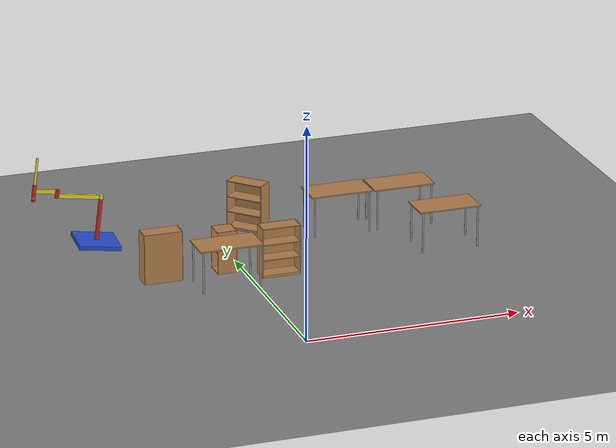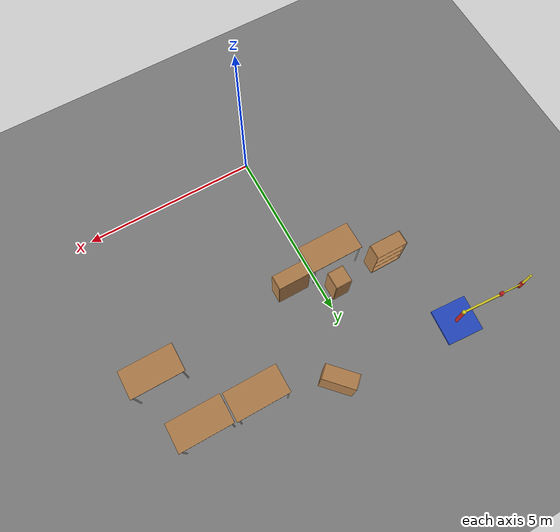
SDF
<sdf version="1.6">
 <world name="default">
  <model name="ground_plane">
   <static>1</static>
   <link name="link">
    <collision name="collision">
     <geometry><plane><normal>0 0 1</normal><size>100 100</size></plane></geometry>
    </collision>
    <visual name="visual">
     <geometry><plane><normal>0 0 1</normal><size>100 100</size></plane></geometry>
     <material>
      <ambient>0.5 0.5 0.5 1</ambient>
      <diffuse>0.5 0.5 0.5 1</diffuse>
      <specular>0.1 0.1 0.1 1</specular>
     </material>
    </visual>
   </link>
  </model>
  <model name="bookshelf_1">
   <static>1</static>
   <link name="link">
    <inertial><mass>1</mass></inertial>
    <collision name="back">
     <pose>0 0.005 0.6 0 -0 0</pose>
     <geometry><box><size>0.9 0.01 1.2</size></box></geometry>
    </collision>
    <visual name="visual1">
     <pose>0 0.005 0.6 0 -0 0</pose>
     <geometry><box><size>0.9 0.01 1.2</size></box></geometry>
     <material>
      <script><uri>file://media/materials/scripts/gazebo.material</uri><name>Gazebo/Wood</name></script>
     </material>
    </visual>
    <collision name="left_side">
     <pose>0.45 -0.195 0.6 0 -0 0</pose>
     <geometry><box><size>0.02 0.4 1.2</size></box></geometry>
    </collision>
    <visual name="visual2">
     <pose>0.45 -0.195 0.6 0 -0 0</pose>
     <geometry><box><size>0.02 0.4 1.2</size></box></geometry>
     <material>
      <script><uri>file://media/materials/scripts/gazebo.material</uri><name>Gazebo/Wood</name></script>
     </material>
    </visual>
    <collision name="right_side">
     <pose>-0.45 -0.195 0.6 0 -0 0</pose>
     <geometry><box><size>0.02 0.4 1.2</size></box></geometry>
    </collision>
    <visual name="visual3">
     <pose>-0.45 -0.195 0.6 0 -0 0</pose>
     <geometry><box><size>0.02 0.4 1.2</size></box></geometry>
     <material>
      <script><uri>file://media/materials/scripts/gazebo.material</uri><name>Gazebo/Wood</name></script>
     </material>
    </visual>
    <collision name="bottom">
     <pose>0 -0.195 0.03 0 -0 0</pose>
     <geometry><box><size>0.88 0.4 0.06</size></box></geometry>
    </collision>
    <visual name="visual4">
     <pose>0 -0.195 0.03 0 -0 0</pose>
     <geometry><box><size>0.88 0.4 0.06</size></box></geometry>
     <material>
      <script><uri>file://media/materials/scripts/gazebo.material</uri><name>Gazebo/Wood</name></script>
     </material>
    </visual>
    <collision name="top">
     <pose>0 -0.195 1.19 0 -0 0</pose>
     <geometry><box><size>0.88 0.4 0.02</size></box></geometry>
    </collision>
    <visual name="visual5">
     <pose>0 -0.195 1.19 0 -0 0</pose>
     <geometry><box><size>0.88 0.4 0.02</size></box></geometry>
     <material>
      <script><uri>file://media/materials/scripts/gazebo.material</uri><name>Gazebo/Wood</name></script>
     </material>
    </visual>
    <collision name="low_shelf">
     <pose>0 -0.195 0.43 0 -0 0</pose>
     <geometry><box><size>0.88 0.4 0.02</size></box></geometry>
    </collision>
    <visual name="visual6">
     <pose>0 -0.195 0.43 0 -0 0</pose>
     <geometry><box><size>0.88 0.4 0.02</size></box></geometry>
     <material>
      <script><uri>file://media/materials/scripts/gazebo.material</uri><name>Gazebo/Wood</name></script>
     </material>
    </visual>
    <collision name="high_shelf">
     <pose>0 -0.195 0.8 0 -0 0</pose>
     <geometry><box><size>0.88 0.4 0.02</size></box></geometry>
    </collision>
    <visual name="visual7">
     <pose>0 -0.195 0.8 0 -0 0</pose>
     <geometry><box><size>0.88 0.4 0.02</size></box></geometry>
     <material>
      <script><uri>file://media/materials/scripts/gazebo.material</uri><name>Gazebo/Wood</name></script>
     </material>
    </visual>
   </link>
   <pose>1.07535 6.96109 0 0 0 -0.814368</pose>
  </model>
  <model name="simple_arm">
   <link name="arm_base">
    <inertial>
     <pose>0 0 0.00099 0 -0 0</pose>
     <inertia><ixx>1.11</ixx><ixy>0</ixy><ixz>0</ixz><iyy>100.11</iyy><iyz>0</iyz><izz>1.01</izz></inertia>
     <mass>101</mass>
    </inertial>
    <collision name="arm_base_geom">
     <pose>0 0 0.05 0 -0 0</pose>
     <geometry><box><size>1 1 0.1</size></box></geometry>
    </collision>
    <visual name="arm_base_geom_visual">
     <pose>0 0 0.05 0 -0 0</pose>
     <geometry><box><size>1 1 0.1</size></box></geometry>
     <material>
      <script><uri>file://media/materials/scripts/gazebo.material</uri><name>Gazebo/Blue</name></script>
     </material>
    </visual>
    <collision name="arm_base_geom_arm_trunk">
     <pose>0 0 0.6 0 -0 0</pose>
     <geometry><cylinder><radius>0.05</radius><length>1</length></cylinder></geometry>
    </collision>
    <visual name="arm_base_geom_arm_trunk_visual">
     <pose>0 0 0.6 0 -0 0</pose>
     <geometry><cylinder><radius>0.05</radius><length>1</length></cylinder></geometry>
     <material>
      <script><uri>file://media/materials/scripts/gazebo.material</uri><name>Gazebo/Red</name></script>
     </material>
    </visual>
   </link>
   <link name="arm_shoulder_pan">
    <pose>0 0 1.1 0 -0 0</pose>
    <inertial>
     <pose>0.045455 0 0 0 -0 0</pose>
     <inertia><ixx>0.011</ixx><ixy>0</ixy><ixz>0</ixz><iyy>0.0225</iyy><iyz>0</iyz><izz>0.0135</izz></inertia>
     <mass>1.1</mass>
    </inertial>
    <collision name="arm_shoulder_pan_geom">
     <pose>0 0 0.05 0 -0 0</pose>
     <geometry><cylinder><radius>0.05</radius><length>0.1</length></cylinder></geometry>
    </collision>
    <visual name="arm_shoulder_pan_geom_visual">
     <pose>0 0 0.05 0 -0 0</pose>
     <geometry><cylinder><radius>0.05</radius><length>0.1</length></cylinder></geometry>
     <material>
      <script><uri>file://media/materials/scripts/gazebo.material</uri><name>Gazebo/Yellow</name></script>
     </material>
    </visual>
    <collision name="arm_shoulder_pan_geom_arm_shoulder">
     <pose>0.55 0 0.05 0 -0 0</pose>
     <geometry><box><size>1 0.05 0.1</size></box></geometry>
    </collision>
    <visual name="arm_shoulder_pan_geom_arm_shoulder_visual">
     <pose>0.55 0 0.05 0 -0 0</pose>
     <geometry><box><size>1 0.05 0.1</size></box></geometry>
     <material>
      <script><uri>file://media/materials/scripts/gazebo.material</uri><name>Gazebo/Yellow</name></script>
     </material>
    </visual>
   </link>
   <link name="arm_elbow_pan">
    <pose>1.05 0 1.1 0 -0 0</pose>
    <inertial>
     <pose>0.0875 0 0.083333 0 -0 0</pose>
     <inertia>
      <ixx>0.031</ixx>
      <ixy>0</ixy>
      <ixz>0.005</ixz>
      <iyy>0.07275</iyy>
      <iyz>0</iyz>
      <izz>0.04475</izz>
     </inertia>
     <mass>1.2</mass>
    </inertial>
    <collision name="arm_elbow_pan_geom">
     <pose>0 0 0.1 0 -0 0</pose>
     <geometry><cylinder><radius>0.05</radius><length>0.2</length></cylinder></geometry>
    </collision>
    <visual name="arm_elbow_pan_geom_visual">
     <pose>0 0 0.1 0 -0 0</pose>
     <geometry><cylinder><radius>0.05</radius><length>0.2</length></cylinder></geometry>
     <material>
      <script><uri>file://media/materials/scripts/gazebo.material</uri><name>Gazebo/Red</name></script>
     </material>
    </visual>
    <collision name="arm_elbow_pan_geom_arm_elbow">
     <pose>0.3 0 0.15 0 -0 0</pose>
     <geometry><box><size>0.5 0.03 0.1</size></box></geometry>
    </collision>
    <visual name="arm_elbow_pan_geom_arm_elbow_visual">
     <pose>0.3 0 0.15 0 -0 0</pose>
     <geometry><box><size>0.5 0.03 0.1</size></box></geometry>
     <material>
      <script><uri>file://media/materials/scripts/gazebo.material</uri><name>Gazebo/Yellow</name></script>
     </material>
    </visual>
    <collision name="arm_elbow_pan_geom_arm_wrist">
     <pose>0.55 0 0.15 0 -0 0</pose>
     <geometry><cylinder><radius>0.05</radius><length>0.3</length></cylinder></geometry>
    </collision>
    <visual name="arm_elbow_pan_geom_arm_wrist_visual">
     <pose>0.55 0 0.15 0 -0 0</pose>
     <geometry><cylinder><radius>0.05</radius><length>0.3</length></cylinder></geometry>
     <material>
      <script><uri>file://media/materials/scripts/gazebo.material</uri><name>Gazebo/Red</name></script>
     </material>
    </visual>
   </link>
   <link name="arm_wrist_lift">
    <pose>1.6 0 1.05 0 -0 0</pose>
    <inertial>
     <inertia><ixx>0.01</ixx><ixy>0</ixy><ixz>0</ixz><iyy>0.01</iyy><iyz>0</iyz><izz>0.001</izz></inertia>
     <mass>0.1</mass>
    </inertial>
    <collision name="arm_wrist_lift_geom">
     <pose>0 0 0.5 0 -0 0</pose>
     <geometry><cylinder><radius>0.03</radius><length>1</length></cylinder></geometry>
    </collision>
    <visual name="arm_wrist_lift_geom_visual">
     <pose>0 0 0.5 0 -0 0</pose>
     <geometry><cylinder><radius>0.03</radius><length>1</length></cylinder></geometry>
     <material>
      <script><uri>file://media/materials/scripts/gazebo.material</uri><name>Gazebo/Yellow</name></script>
     </material>
    </visual>
   </link>
   <link name="arm_wrist_roll">
    <pose>1.6 0 1 0 -0 0</pose>
    <inertial>
     <inertia><ixx>0.01</ixx><ixy>0</ixy><ixz>0</ixz><iyy>0.01</iyy><iyz>0</iyz><izz>0.001</izz></inertia>
     <mass>0.1</mass>
    </inertial>
    <collision name="arm_wrist_roll_geom">
     <pose>0 0 0.025 0 -0 0</pose>
     <geometry><cylinder><radius>0.05</radius><length>0.05</length></cylinder></geometry>
    </collision>
    <visual name="arm_wrist_roll_geom_visual">
     <pose>0 0 0.025 0 -0 0</pose>
     <geometry><cylinder><radius>0.05</radius><length>0.05</length></cylinder></geometry>
     <material>
      <script><uri>file://media/materials/scripts/gazebo.material</uri><name>Gazebo/Red</name></script>
     </material>
    </visual>
   </link>
   <joint name="arm_shoulder_pan_joint" type="revolute">
    <parent>arm_base</parent>
    <child>arm_shoulder_pan</child>
    <axis>
     <dynamics>
      <damping>1</damping>
      <friction>0</friction>
      <spring_reference>0</spring_reference>
      <spring_stiffness>0</spring_stiffness>
     </dynamics>
     <xyz>0 0 1</xyz>
     <use_parent_model_frame>1</use_parent_model_frame>
     <limit><lower>-1e+16</lower><upper>1e+16</upper></limit>
    </axis>
   </joint>
   <joint name="arm_elbow_pan_joint" type="revolute">
    <parent>arm_shoulder_pan</parent>
    <child>arm_elbow_pan</child>
    <axis>
     <dynamics>
      <damping>1</damping>
      <friction>0</friction>
      <spring_reference>0</spring_reference>
      <spring_stiffness>0</spring_stiffness>
     </dynamics>
     <xyz>0 0 1</xyz>
     <use_parent_model_frame>1</use_parent_model_frame>
     <limit><lower>-1e+16</lower><upper>1e+16</upper></limit>
    </axis>
   </joint>
   <joint name="arm_wrist_lift_joint" type="prismatic">
    <parent>arm_elbow_pan</parent>
    <child>arm_wrist_lift</child>
    <axis>
     <dynamics>
      <damping>1</damping>
      <friction>0</friction>
      <spring_reference>0</spring_reference>
      <spring_stiffness>0</spring_stiffness>
     </dynamics>
     <limit><lower>-0.8</lower><upper>0.1</upper></limit>
     <xyz>0 0 1</xyz>
     <use_parent_model_frame>1</use_parent_model_frame>
    </axis>
   </joint>
   <joint name="arm_wrist_roll_joint" type="revolute">
    <parent>arm_wrist_lift</parent>
    <child>arm_wrist_roll</child>
    <axis>
     <dynamics>
      <damping>1</damping>
      <friction>0</friction>
      <spring_reference>0</spring_reference>
      <spring_stiffness>0</spring_stiffness>
     </dynamics>
     <limit><lower>-2.99999</lower><upper>2.99999</upper></limit>
     <xyz>0 0 1</xyz>
     <use_parent_model_frame>1</use_parent_model_frame>
    </axis>
   </joint>
   <pose>-2.75863 6.95612 0.06564 0.003904 -0.123588 3.0678</pose>
  </model>
  <model name="bookshelf_2_clone">
   <static>1</static>
   <link name="link">
    <inertial><mass>1</mass></inertial>
    <collision name="back">
     <pose>0 0.005 0.6 0 -0 0</pose>
     <geometry><box><size>0.9 0.01 1.2</size></box></geometry>
    </collision>
    <visual name="visual1">
     <pose>0 0.005 0.6 0 -0 0</pose>
     <geometry><box><size>0.9 0.01 1.2</size></box></geometry>
     <material>
      <script><uri>file://media/materials/scripts/gazebo.material</uri><name>Gazebo/Wood</name></script>
     </material>
    </visual>
    <collision name="left_side">
     <pose>0.45 -0.195 0.6 0 -0 0</pose>
     <geometry><box><size>0.02 0.4 1.2</size></box></geometry>
    </collision>
    <visual name="visual2">
     <pose>0.45 -0.195 0.6 0 -0 0</pose>
     <geometry><box><size>0.02 0.4 1.2</size></box></geometry>
     <material>
      <script><uri>file://media/materials/scripts/gazebo.material</uri><name>Gazebo/Wood</name></script>
     </material>
    </visual>
    <collision name="right_side">
     <pose>-0.45 -0.195 0.6 0 -0 0</pose>
     <geometry><box><size>0.02 0.4 1.2</size></box></geometry>
    </collision>
    <visual name="visual3">
     <pose>-0.45 -0.195 0.6 0 -0 0</pose>
     <geometry><box><size>0.02 0.4 1.2</size></box></geometry>
     <material>
      <script><uri>file://media/materials/scripts/gazebo.material</uri><name>Gazebo/Wood</name></script>
     </material>
    </visual>
    <collision name="bottom">
     <pose>0 -0.195 0.03 0 -0 0</pose>
     <geometry><box><size>0.88 0.4 0.06</size></box></geometry>
    </collision>
    <visual name="visual4">
     <pose>0 -0.195 0.03 0 -0 0</pose>
     <geometry><box><size>0.88 0.4 0.06</size></box></geometry>
     <material>
      <script><uri>file://media/materials/scripts/gazebo.material</uri><name>Gazebo/Wood</name></script>
     </material>
    </visual>
    <collision name="top">
     <pose>0 -0.195 1.19 0 -0 0</pose>
     <geometry><box><size>0.88 0.4 0.02</size></box></geometry>
    </collision>
    <visual name="visual5">
     <pose>0 -0.195 1.19 0 -0 0</pose>
     <geometry><box><size>0.88 0.4 0.02</size></box></geometry>
     <material>
      <script><uri>file://media/materials/scripts/gazebo.material</uri><name>Gazebo/Wood</name></script>
     </material>
    </visual>
    <collision name="low_shelf">
     <pose>0 -0.195 0.43 0 -0 0</pose>
     <geometry><box><size>0.88 0.4 0.02</size></box></geometry>
    </collision>
    <visual name="visual6">
     <pose>0 -0.195 0.43 0 -0 0</pose>
     <geometry><box><size>0.88 0.4 0.02</size></box></geometry>
     <material>
      <script><uri>file://media/materials/scripts/gazebo.material</uri><name>Gazebo/Wood</name></script>
     </material>
    </visual>
    <collision name="high_shelf">
     <pose>0 -0.195 0.8 0 -0 0</pose>
     <geometry><box><size>0.88 0.4 0.02</size></box></geometry>
    </collision>
    <visual name="visual7">
     <pose>0 -0.195 0.8 0 -0 0</pose>
     <geometry><box><size>0.88 0.4 0.02</size></box></geometry>
     <material>
      <script><uri>file://media/materials/scripts/gazebo.material</uri><name>Gazebo/Wood</name></script>
     </material>
    </visual>
   </link>
   <pose>-1.94213 4.27216 0 0 -0 3.13914</pose>
  </model>
  <model name="cabinet_1">
   <static>1</static>
   <link name="cabinet_bottom_plate">
    <inertial>
     <pose>0 0 -1 0 -0 0</pose>
     <inertia><ixx>2.05</ixx><ixy>0</ixy><ixz>0</ixz><iyy>2.05</iyy><iyz>0</iyz><izz>2.05</izz></inertia>
     <mass>25</mass>
    </inertial>
    <collision name="cabinet_bottom_plate_geom">
     <pose>0 0 0.01 0 -0 0</pose>
     <geometry><box><size>0.45 0.45 0.02</size></box></geometry>
    </collision>
    <visual name="cabinet_bottom_plate_geom_visual">
     <pose>0 0 0.01 0 -0 0</pose>
     <geometry><box><size>0.45 0.45 0.02</size></box></geometry>
     <material>
      <script><uri>file://media/materials/scripts/gazebo.material</uri><name>Gazebo/Wood</name></script>
     </material>
    </visual>
    <collision name="cabinet_bottom_plate_geom_cabinet_back_plate">
     <pose>0.235 0 0.51 0 -0 0</pose>
     <geometry><box><size>0.02 0.45 1.02</size></box></geometry>
    </collision>
    <visual name="cabinet_bottom_plate_geom_cabinet_back_plate_visual">
     <pose>0.235 0 0.51 0 -0 0</pose>
     <geometry><box><size>0.02 0.45 1.02</size></box></geometry>
     <material>
      <script><uri>file://media/materials/scripts/gazebo.material</uri><name>Gazebo/Wood</name></script>
     </material>
    </visual>
    <collision name="cabinet_bottom_plate_geom_cabinet_left_plate">
     <pose>0 0.235 0.51 0 -0 0</pose>
     <geometry><box><size>0.45 0.02 1.02</size></box></geometry>
    </collision>
    <visual name="cabinet_bottom_plate_geom_cabinet_left_plate_visual">
     <pose>0 0.235 0.51 0 -0 0</pose>
     <geometry><box><size>0.45 0.02 1.02</size></box></geometry>
     <material>
      <script><uri>file://media/materials/scripts/gazebo.material</uri><name>Gazebo/Wood</name></script>
     </material>
    </visual>
    <collision name="cabinet_bottom_plate_geom_cabinet_middle_plate">
     <pose>0 0 0.51 0 -0 0</pose>
     <geometry><box><size>0.45 0.45 0.02</size></box></geometry>
    </collision>
    <visual name="cabinet_bottom_plate_geom_cabinet_middle_plate_visual">
     <pose>0 0 0.51 0 -0 0</pose>
     <geometry><box><size>0.45 0.45 0.02</size></box></geometry>
     <material>
      <script><uri>file://media/materials/scripts/gazebo.material</uri><name>Gazebo/Wood</name></script>
     </material>
    </visual>
    <collision name="cabinet_bottom_plate_geom_cabinet_right_plate">
     <pose>0 -0.235 0.51 0 -0 0</pose>
     <geometry><box><size>0.45 0.02 1.02</size></box></geometry>
    </collision>
    <visual name="cabinet_bottom_plate_geom_cabinet_right_plate_visual">
     <pose>0 -0.235 0.51 0 -0 0</pose>
     <geometry><box><size>0.45 0.02 1.02</size></box></geometry>
     <material>
      <script><uri>file://media/materials/scripts/gazebo.material</uri><name>Gazebo/Wood</name></script>
     </material>
    </visual>
    <collision name="cabinet_bottom_plate_geom_cabinet_top_plate">
     <pose>0 0 1.01 0 -0 0</pose>
     <geometry><box><size>0.45 0.45 0.02</size></box></geometry>
    </collision>
    <visual name="cabinet_bottom_plate_geom_cabinet_top_plate_visual">
     <pose>0 0 1.01 0 -0 0</pose>
     <geometry><box><size>0.45 0.45 0.02</size></box></geometry>
     <material>
      <script><uri>file://media/materials/scripts/gazebo.material</uri><name>Gazebo/Wood</name></script>
     </material>
    </visual>
   </link>
   <pose>-0.399755 4.57245 0 0 -0 0</pose>
  </model>
  <model name="table_1">
   <static>1</static>
   <link name="link">
    <collision name="surface">
     <pose>0 0 1 0 -0 0</pose>
     <geometry><box><size>1.5 0.8 0.03</size></box></geometry>
     <surface><friction><ode><mu>0.6</mu><mu2>0.6</mu2></ode></friction></surface>
    </collision>
    <visual name="visual1">
     <pose>0 0 1 0 -0 0</pose>
     <geometry><box><size>1.5 0.8 0.03</size></box></geometry>
     <material>
      <script><uri>file://media/materials/scripts/gazebo.material</uri><name>Gazebo/Wood</name></script>
     </material>
    </visual>
    <collision name="front_left_leg">
     <pose>0.68 0.38 0.5 0 -0 0</pose>
     <geometry><cylinder><radius>0.02</radius><length>1</length></cylinder></geometry>
    </collision>
    <visual name="front_left_leg">
     <pose>0.68 0.38 0.5 0 -0 0</pose>
     <geometry><cylinder><radius>0.02</radius><length>1</length></cylinder></geometry>
     <material>
      <script><uri>file://media/materials/scripts/gazebo.material</uri><name>Gazebo/Grey</name></script>
     </material>
    </visual>
    <collision name="front_right_leg">
     <pose>0.68 -0.38 0.5 0 -0 0</pose>
     <geometry><cylinder><radius>0.02</radius><length>1</length></cylinder></geometry>
    </collision>
    <visual name="front_right_leg">
     <pose>0.68 -0.38 0.5 0 -0 0</pose>
     <geometry><cylinder><radius>0.02</radius><length>1</length></cylinder></geometry>
     <material>
      <script><uri>file://media/materials/scripts/gazebo.material</uri><name>Gazebo/Grey</name></script>
     </material>
    </visual>
    <collision name="back_right_leg">
     <pose>-0.68 -0.38 0.5 0 -0 0</pose>
     <geometry><cylinder><radius>0.02</radius><length>1</length></cylinder></geometry>
    </collision>
    <visual name="back_right_leg">
     <pose>-0.68 -0.38 0.5 0 -0 0</pose>
     <geometry><cylinder><radius>0.02</radius><length>1</length></cylinder></geometry>
     <material>
      <script><uri>file://media/materials/scripts/gazebo.material</uri><name>Gazebo/Grey</name></script>
     </material>
    </visual>
    <collision name="back_left_leg">
     <pose>-0.68 0.38 0.5 0 -0 0</pose>
     <geometry><cylinder><radius>0.02</radius><length>1</length></cylinder></geometry>
    </collision>
    <visual name="back_left_leg">
     <pose>-0.68 0.38 0.5 0 -0 0</pose>
     <geometry><cylinder><radius>0.02</radius><length>1</length></cylinder></geometry>
     <material>
      <script><uri>file://media/materials/scripts/gazebo.material</uri><name>Gazebo/Grey</name></script>
     </material>
    </visual>
   </link>
   <pose>4.9573 4.40893 0 0 -0 0</pose>
  </model>
  <model name="table_1_clone_0">
   <static>1</static>
   <link name="link">
    <collision name="surface">
     <pose>0 0 1 0 -0 0</pose>
     <geometry><box><size>1.5 0.8 0.03</size></box></geometry>
     <surface><friction><ode><mu>0.6</mu><mu2>0.6</mu2></ode></friction></surface>
    </collision>
    <visual name="visual1">
     <pose>0 0 1 0 -0 0</pose>
     <geometry><box><size>1.5 0.8 0.03</size></box></geometry>
     <material>
      <script><uri>file://media/materials/scripts/gazebo.material</uri><name>Gazebo/Wood</name></script>
     </material>
    </visual>
    <collision name="front_left_leg">
     <pose>0.68 0.38 0.5 0 -0 0</pose>
     <geometry><cylinder><radius>0.02</radius><length>1</length></cylinder></geometry>
    </collision>
    <visual name="front_left_leg">
     <pose>0.68 0.38 0.5 0 -0 0</pose>
     <geometry><cylinder><radius>0.02</radius><length>1</length></cylinder></geometry>
     <material>
      <script><uri>file://media/materials/scripts/gazebo.material</uri><name>Gazebo/Grey</name></script>
     </material>
    </visual>
    <collision name="front_right_leg">
     <pose>0.68 -0.38 0.5 0 -0 0</pose>
     <geometry><cylinder><radius>0.02</radius><length>1</length></cylinder></geometry>
    </collision>
    <visual name="front_right_leg">
     <pose>0.68 -0.38 0.5 0 -0 0</pose>
     <geometry><cylinder><radius>0.02</radius><length>1</length></cylinder></geometry>
     <material>
      <script><uri>file://media/materials/scripts/gazebo.material</uri><name>Gazebo/Grey</name></script>
     </material>
    </visual>
    <collision name="back_right_leg">
     <pose>-0.68 -0.38 0.5 0 -0 0</pose>
     <geometry><cylinder><radius>0.02</radius><length>1</length></cylinder></geometry>
    </collision>
    <visual name="back_right_leg">
     <pose>-0.68 -0.38 0.5 0 -0 0</pose>
     <geometry><cylinder><radius>0.02</radius><length>1</length></cylinder></geometry>
     <material>
      <script><uri>file://media/materials/scripts/gazebo.material</uri><name>Gazebo/Grey</name></script>
     </material>
    </visual>
    <collision name="back_left_leg">
     <pose>-0.68 0.38 0.5 0 -0 0</pose>
     <geometry><cylinder><radius>0.02</radius><length>1</length></cylinder></geometry>
    </collision>
    <visual name="back_left_leg">
     <pose>-0.68 0.38 0.5 0 -0 0</pose>
     <geometry><cylinder><radius>0.02</radius><length>1</length></cylinder></geometry>
     <material>
      <script><uri>file://media/materials/scripts/gazebo.material</uri><name>Gazebo/Grey</name></script>
     </material>
    </visual>
   </link>
   <pose>4.46718 6.11636 0 0 -0 0</pose>
  </model>
  <model name="table_1_clone_3">
   <static>1</static>
   <link name="link">
    <collision name="surface">
     <pose>0 0 1 0 -0 0</pose>
     <geometry><box><size>1.5 0.8 0.03</size></box></geometry>
     <surface><friction><ode><mu>0.6</mu><mu2>0.6</mu2></ode></friction></surface>
    </collision>
    <visual name="visual1">
     <pose>0 0 1 0 -0 0</pose>
     <geometry><box><size>1.5 0.8 0.03</size></box></geometry>
     <material>
      <script><uri>file://media/materials/scripts/gazebo.material</uri><name>Gazebo/Wood</name></script>
     </material>
    </visual>
    <collision name="front_left_leg">
     <pose>0.68 0.38 0.5 0 -0 0</pose>
     <geometry><cylinder><radius>0.02</radius><length>1</length></cylinder></geometry>
    </collision>
    <visual name="front_left_leg">
     <pose>0.68 0.38 0.5 0 -0 0</pose>
     <geometry><cylinder><radius>0.02</radius><length>1</length></cylinder></geometry>
     <material>
      <script><uri>file://media/materials/scripts/gazebo.material</uri><name>Gazebo/Grey</name></script>
     </material>
    </visual>
    <collision name="front_right_leg">
     <pose>0.68 -0.38 0.5 0 -0 0</pose>
     <geometry><cylinder><radius>0.02</radius><length>1</length></cylinder></geometry>
    </collision>
    <visual name="front_right_leg">
     <pose>0.68 -0.38 0.5 0 -0 0</pose>
     <geometry><cylinder><radius>0.02</radius><length>1</length></cylinder></geometry>
     <material>
      <script><uri>file://media/materials/scripts/gazebo.material</uri><name>Gazebo/Grey</name></script>
     </material>
    </visual>
    <collision name="back_right_leg">
     <pose>-0.68 -0.38 0.5 0 -0 0</pose>
     <geometry><cylinder><radius>0.02</radius><length>1</length></cylinder></geometry>
    </collision>
    <visual name="back_right_leg">
     <pose>-0.68 -0.38 0.5 0 -0 0</pose>
     <geometry><cylinder><radius>0.02</radius><length>1</length></cylinder></geometry>
     <material>
      <script><uri>file://media/materials/scripts/gazebo.material</uri><name>Gazebo/Grey</name></script>
     </material>
    </visual>
    <collision name="back_left_leg">
     <pose>-0.68 0.38 0.5 0 -0 0</pose>
     <geometry><cylinder><radius>0.02</radius><length>1</length></cylinder></geometry>
    </collision>
    <visual name="back_left_leg">
     <pose>-0.68 0.38 0.5 0 -0 0</pose>
     <geometry><cylinder><radius>0.02</radius><length>1</length></cylinder></geometry>
     <material>
      <script><uri>file://media/materials/scripts/gazebo.material</uri><name>Gazebo/Grey</name></script>
     </material>
    </visual>
   </link>
   <pose>2.91629 6.14379 0 0 -0 0</pose>
  </model>
  <model name="bookshelf_6">
   <static>1</static>
   <link name="link">
    <inertial><mass>1</mass></inertial>
    <collision name="back">
     <pose>0 0.005 0.6 0 -0 0</pose>
     <geometry><box><size>0.9 0.01 1.2</size></box></geometry>
    </collision>
    <visual name="visual1">
     <pose>0 0.005 0.6 0 -0 0</pose>
     <geometry><box><size>0.9 0.01 1.2</size></box></geometry>
     <material>
      <script><uri>file://media/materials/scripts/gazebo.material</uri><name>Gazebo/Wood</name></script>
     </material>
    </visual>
    <collision name="left_side">
     <pose>0.45 -0.195 0.6 0 -0 0</pose>
     <geometry><box><size>0.02 0.4 1.2</size></box></geometry>
    </collision>
    <visual name="visual2">
     <pose>0.45 -0.195 0.6 0 -0 0</pose>
     <geometry><box><size>0.02 0.4 1.2</size></box></geometry>
     <material>
      <script><uri>file://media/materials/scripts/gazebo.material</uri><name>Gazebo/Wood</name></script>
     </material>
    </visual>
    <collision name="right_side">
     <pose>-0.45 -0.195 0.6 0 -0 0</pose>
     <geometry><box><size>0.02 0.4 1.2</size></box></geometry>
    </collision>
    <visual name="visual3">
     <pose>-0.45 -0.195 0.6 0 -0 0</pose>
     <geometry><box><size>0.02 0.4 1.2</size></box></geometry>
     <material>
      <script><uri>file://media/materials/scripts/gazebo.material</uri><name>Gazebo/Wood</name></script>
     </material>
    </visual>
    <collision name="bottom">
     <pose>0 -0.195 0.03 0 -0 0</pose>
     <geometry><box><size>0.88 0.4 0.06</size></box></geometry>
    </collision>
    <visual name="visual4">
     <pose>0 -0.195 0.03 0 -0 0</pose>
     <geometry><box><size>0.88 0.4 0.06</size></box></geometry>
     <material>
      <script><uri>file://media/materials/scripts/gazebo.material</uri><name>Gazebo/Wood</name></script>
     </material>
    </visual>
    <collision name="top">
     <pose>0 -0.195 1.19 0 -0 0</pose>
     <geometry><box><size>0.88 0.4 0.02</size></box></geometry>
    </collision>
    <visual name="visual5">
     <pose>0 -0.195 1.19 0 -0 0</pose>
     <geometry><box><size>0.88 0.4 0.02</size></box></geometry>
     <material>
      <script><uri>file://media/materials/scripts/gazebo.material</uri><name>Gazebo/Wood</name></script>
     </material>
    </visual>
    <collision name="low_shelf">
     <pose>0 -0.195 0.43 0 -0 0</pose>
     <geometry><box><size>0.88 0.4 0.02</size></box></geometry>
    </collision>
    <visual name="visual6">
     <pose>0 -0.195 0.43 0 -0 0</pose>
     <geometry><box><size>0.88 0.4 0.02</size></box></geometry>
     <material>
      <script><uri>file://media/materials/scripts/gazebo.material</uri><name>Gazebo/Wood</name></script>
     </material>
    </visual>
    <collision name="high_shelf">
     <pose>0 -0.195 0.8 0 -0 0</pose>
     <geometry><box><size>0.88 0.4 0.02</size></box></geometry>
    </collision>
    <visual name="visual7">
     <pose>0 -0.195 0.8 0 -0 0</pose>
     <geometry><box><size>0.88 0.4 0.02</size></box></geometry>
     <material>
      <script><uri>file://media/materials/scripts/gazebo.material</uri><name>Gazebo/Wood</name></script>
     </material>
    </visual>
   </link>
   <pose>0.723958 4.14987 0 0 -0 0</pose>
  </model>
  <model name="table_2">
   <static>1</static>
   <link name="link">
    <collision name="surface">
     <pose>0 0 1 0 -0 0</pose>
     <geometry><box><size>1.5 0.8 0.03</size></box></geometry>
     <surface><friction><ode><mu>0.6</mu><mu2>0.6</mu2></ode></friction></surface>
    </collision>
    <visual name="visual1">
     <pose>0 0 1 0 -0 0</pose>
     <geometry><box><size>1.5 0.8 0.03</size></box></geometry>
     <material>
      <script><uri>file://media/materials/scripts/gazebo.material</uri><name>Gazebo/Wood</name></script>
     </material>
    </visual>
    <collision name="front_left_leg">
     <pose>0.68 0.38 0.5 0 -0 0</pose>
     <geometry><cylinder><radius>0.02</radius><length>1</length></cylinder></geometry>
    </collision>
    <visual name="front_left_leg">
     <pose>0.68 0.38 0.5 0 -0 0</pose>
     <geometry><cylinder><radius>0.02</radius><length>1</length></cylinder></geometry>
     <material>
      <script><uri>file://media/materials/scripts/gazebo.material</uri><name>Gazebo/Grey</name></script>
     </material>
    </visual>
    <collision name="front_right_leg">
     <pose>0.68 -0.38 0.5 0 -0 0</pose>
     <geometry><cylinder><radius>0.02</radius><length>1</length></cylinder></geometry>
    </collision>
    <visual name="front_right_leg">
     <pose>0.68 -0.38 0.5 0 -0 0</pose>
     <geometry><cylinder><radius>0.02</radius><length>1</length></cylinder></geometry>
     <material>
      <script><uri>file://media/materials/scripts/gazebo.material</uri><name>Gazebo/Grey</name></script>
     </material>
    </visual>
    <collision name="back_right_leg">
     <pose>-0.68 -0.38 0.5 0 -0 0</pose>
     <geometry><cylinder><radius>0.02</radius><length>1</length></cylinder></geometry>
    </collision>
    <visual name="back_right_leg">
     <pose>-0.68 -0.38 0.5 0 -0 0</pose>
     <geometry><cylinder><radius>0.02</radius><length>1</length></cylinder></geometry>
     <material>
      <script><uri>file://media/materials/scripts/gazebo.material</uri><name>Gazebo/Grey</name></script>
     </material>
    </visual>
    <collision name="back_left_leg">
     <pose>-0.68 0.38 0.5 0 -0 0</pose>
     <geometry><cylinder><radius>0.02</radius><length>1</length></cylinder></geometry>
    </collision>
    <visual name="back_left_leg">
     <pose>-0.68 0.38 0.5 0 -0 0</pose>
     <geometry><cylinder><radius>0.02</radius><length>1</length></cylinder></geometry>
     <material>
      <script><uri>file://media/materials/scripts/gazebo.material</uri><name>Gazebo/Grey</name></script>
     </material>
    </visual>
   </link>
   <pose>-0.601962 3.73799 0 0 -0 0</pose>
  </model>
 </world>
</sdf>
